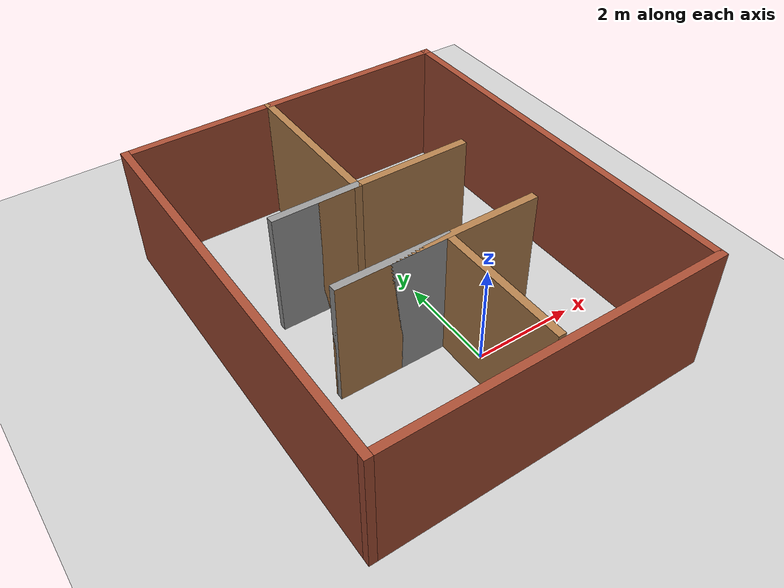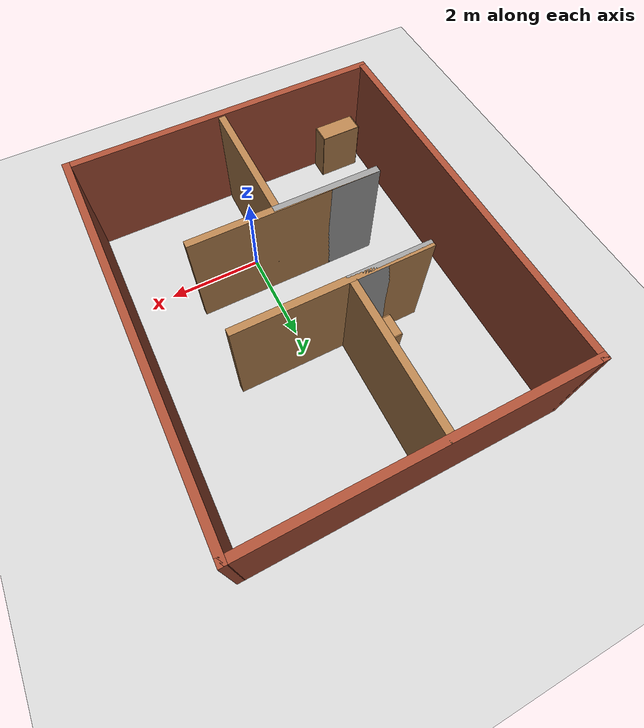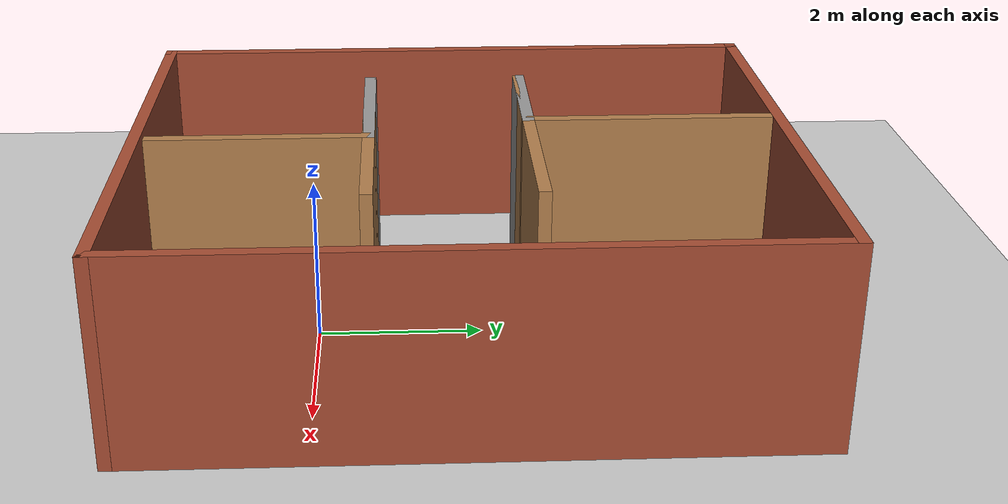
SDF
<sdf version="1.7">
 <world name="default">
  <light name="sun" type="directional">
   <pose>0 0 10 0 -0 0</pose>
   <diffuse>0.8 0.8 0.8 1</diffuse>
   <specular>0.2 0.2 0.2 1</specular>
   <attenuation>
    <range>1000</range>
    <constant>0.9</constant>
    <linear>0.01</linear>
    <quadratic>0.001</quadratic>
   </attenuation>
   <direction>-0.5 0.1 -0.9</direction>
   <spot><inner_angle>0</inner_angle><outer_angle>0</outer_angle><falloff>0</falloff></spot>
  </light>
  <model name="ground_plane">
   <static>1</static>
   <link name="link">
    <collision name="collision">
     <geometry><plane><normal>0 0 1</normal><size>100 100</size></plane></geometry>
     <surface>
      <contact><collide_bitmask>65535</collide_bitmask></contact>
      <friction><ode><mu>100</mu><mu2>50</mu2></ode></friction>
     </surface>
    </collision>
    <visual name="visual">
     <cast_shadows>0</cast_shadows>
     <geometry><plane><normal>0 0 1</normal><size>100 100</size></plane></geometry>
     <material>
      <script><uri>file://media/materials/scripts/gazebo.material</uri><name>Gazebo/Grey</name></script>
     </material>
    </visual>
   </link>
  </model>
  <gravity>0 0 -9.8</gravity>
  <magnetic_field>6e-06 2.3e-05 -4.2e-05</magnetic_field>
  <atmosphere type="adiabatic"/>
  <physics type="ode">
   <max_step_size>0.001</max_step_size>
   <real_time_factor>1</real_time_factor>
   <real_time_update_rate>1000</real_time_update_rate>
  </physics>
  <scene><ambient>0.4 0.4 0.4 1</ambient><background>0.7 0.7 0.7 1</background><shadows>1</shadows></scene>
  <spherical_coordinates>
   <surface_model>EARTH_WGS84</surface_model>
   <latitude_deg>0</latitude_deg>
   <longitude_deg>0</longitude_deg>
   <elevation>0</elevation>
   <heading_deg>0</heading_deg>
  </spherical_coordinates>
  <model name="model16">
   <pose>-0.402521 1.78909 0 0 -0 0</pose>
   <link name="Wall_0">
    <collision name="Wall_0_Collision">
     <geometry><box><size>8 0.15 2.5</size></box></geometry>
     <pose>0 0 1.25 0 -0 0</pose>
    </collision>
    <visual name="Wall_0_Visual">
     <pose>0 0 1.25 0 -0 0</pose>
     <geometry><box><size>8 0.15 2.5</size></box></geometry>
     <material>
      <script><uri>file://media/materials/scripts/gazebo.material</uri><name>Gazebo/Bricks</name></script>
      <ambient>1 1 1 1</ambient>
     </material>
     <meta><layer>0</layer></meta>
    </visual>
    <pose>-3.3 0 0 0 -0 1.5708</pose>
   </link>
   <link name="Wall_1">
    <collision name="Wall_1_Collision">
     <geometry><box><size>6.75 0.15 2.5</size></box></geometry>
     <pose>0 0 1.25 0 -0 0</pose>
    </collision>
    <visual name="Wall_1_Visual">
     <pose>0 0 1.25 0 -0 0</pose>
     <geometry><box><size>6.75 0.15 2.5</size></box></geometry>
     <material>
      <script><uri>file://media/materials/scripts/gazebo.material</uri><name>Gazebo/Bricks</name></script>
      <ambient>1 1 1 1</ambient>
     </material>
     <meta><layer>0</layer></meta>
    </visual>
    <pose>0 3.925 0 0 -0 0</pose>
   </link>
   <link name="Wall_10">
    <collision name="Wall_10_Collision">
     <geometry><box><size>2.75 0.15 2.5</size></box></geometry>
     <pose>0 0 1.25 0 -0 0</pose>
    </collision>
    <visual name="Wall_10_Visual">
     <pose>0 0 1.25 0 -0 0</pose>
     <geometry><box><size>2.75 0.15 2.5</size></box></geometry>
     <material>
      <script><uri>file://media/materials/scripts/gazebo.material</uri><name>Gazebo/Wood</name></script>
      <ambient>1 1 1 1</ambient>
     </material>
     <meta><layer>0</layer></meta>
    </visual>
    <pose>0.083522 -2.43453 0 0 -0 1.5708</pose>
   </link>
   <link name="Wall_11">
    <collision name="Wall_11_Collision">
     <geometry><box><size>2.25 0.15 2.5</size></box></geometry>
     <pose>0 0 1.25 0 -0 0</pose>
    </collision>
    <visual name="Wall_11_Visual">
     <pose>0 0 1.25 0 -0 0</pose>
     <geometry><box><size>2.25 0.15 2.5</size></box></geometry>
     <material>
      <script><uri>file://media/materials/scripts/gazebo.material</uri><name>Gazebo/Grey</name></script>
      <ambient>1 1 1 1</ambient>
     </material>
     <meta><layer>0</layer></meta>
    </visual>
    <pose>-0.966478 -1.13453 0 0 -0 3.14159</pose>
   </link>
   <link name="Wall_12">
    <collision name="Wall_12_Collision">
     <geometry><box><size>4 0.15 2.5</size></box></geometry>
     <pose>0 0 1.25 0 -0 0</pose>
    </collision>
    <visual name="Wall_12_Visual">
     <pose>0 0 1.25 0 -0 0</pose>
     <geometry><box><size>4 0.15 2.5</size></box></geometry>
     <material>
      <script><uri>file://media/materials/scripts/gazebo.material</uri><name>Gazebo/Wood</name></script>
      <ambient>1 1 1 1</ambient>
     </material>
     <meta><layer>0</layer></meta>
    </visual>
    <pose>-0.091478 -1.13453 0 0 -0 0</pose>
   </link>
   <link name="Wall_2">
    <collision name="Wall_2_Collision">
     <geometry><box><size>8 0.15 2.5</size></box></geometry>
     <pose>0 0 1.25 0 -0 0</pose>
    </collision>
    <visual name="Wall_2_Visual">
     <pose>0 0 1.25 0 -0 0</pose>
     <geometry><box><size>8 0.15 2.5</size></box></geometry>
     <material>
      <script><uri>file://media/materials/scripts/gazebo.material</uri><name>Gazebo/Bricks</name></script>
      <ambient>1 1 1 1</ambient>
     </material>
     <meta><layer>0</layer></meta>
    </visual>
    <pose>3.3 0 0 0 -0 -1.5708</pose>
   </link>
   <link name="Wall_3">
    <collision name="Wall_3_Collision">
     <geometry><box><size>6.75 0.15 2.5</size></box></geometry>
     <pose>0 0 1.25 0 -0 0</pose>
    </collision>
    <visual name="Wall_3_Visual">
     <pose>0 0 1.25 0 -0 0</pose>
     <geometry><box><size>6.75 0.15 2.5</size></box></geometry>
     <material>
      <script><uri>file://media/materials/scripts/gazebo.material</uri><name>Gazebo/Bricks</name></script>
      <ambient>1 1 1 1</ambient>
     </material>
     <meta><layer>0</layer></meta>
    </visual>
    <pose>0 -3.925 0 0 -0 3.14159</pose>
   </link>
   <link name="Wall_5">
    <collision name="Wall_5_Collision">
     <geometry><box><size>3.25 0.15 2.5</size></box></geometry>
     <pose>0 0 1.25 0 -0 0</pose>
    </collision>
    <visual name="Wall_5_Visual">
     <pose>0 0 1.25 0 -0 0</pose>
     <geometry><box><size>3.25 0.15 2.5</size></box></geometry>
     <material>
      <script><uri>file://media/materials/scripts/gazebo.material</uri><name>Gazebo/Wood</name></script>
      <ambient>1 1 1 1</ambient>
     </material>
     <meta><layer>0</layer></meta>
    </visual>
    <pose>-0.413627 2.37183 0 0 -0 -1.5708</pose>
   </link>
   <link name="Wall_6">
    <collision name="Wall_6_Collision">
     <geometry><box><size>1.75 0.15 2.5</size></box></geometry>
     <pose>0 0 1.25 0 -0 0</pose>
    </collision>
    <visual name="Wall_6_Visual">
     <pose>0 0 1.25 0 -0 0</pose>
     <geometry><box><size>1.75 0.15 2.5</size></box></geometry>
     <material>
      <script><uri>file://media/materials/scripts/gazebo.material</uri><name>Gazebo/Grey</name></script>
      <ambient>1 1 1 1</ambient>
     </material>
     <meta><layer>0</layer></meta>
    </visual>
    <pose>-1.21363 0.821833 0 0 -0 -3.14159</pose>
   </link>
   <link name="Wall_7">
    <collision name="Wall_7_Collision">
     <geometry><box><size>4 0.15 2.5</size></box></geometry>
     <pose>0 0 1.25 0 -0 0</pose>
    </collision>
    <visual name="Wall_7_Visual">
     <pose>0 0 1.25 0 -0 0</pose>
     <geometry><box><size>4 0.15 2.5</size></box></geometry>
     <material>
      <script><uri>file://media/materials/scripts/gazebo.material</uri><name>Gazebo/Wood</name></script>
      <ambient>1 1 1 1</ambient>
     </material>
     <meta><layer>0</layer></meta>
    </visual>
    <pose>-0.088627 0.821833 0 0 -0 0</pose>
   </link>
   <static>1</static>
  </model>
  <model name="bookshelf">
   <static>1</static>
   <link name="link">
    <inertial><mass>1</mass></inertial>
    <collision name="back">
     <pose>0 0.005 0.6 0 -0 0</pose>
     <geometry><box><size>0.9 0.01 1.2</size></box></geometry>
    </collision>
    <visual name="visual1">
     <pose>0 0.005 0.6 0 -0 0</pose>
     <geometry><box><size>0.9 0.01 1.2</size></box></geometry>
     <material>
      <script><uri>file://media/materials/scripts/gazebo.material</uri><name>Gazebo/Wood</name></script>
     </material>
    </visual>
    <collision name="left_side">
     <pose>0.45 -0.195 0.6 0 -0 0</pose>
     <geometry><box><size>0.02 0.4 1.2</size></box></geometry>
    </collision>
    <visual name="visual2">
     <pose>0.45 -0.195 0.6 0 -0 0</pose>
     <geometry><box><size>0.02 0.4 1.2</size></box></geometry>
     <material>
      <script><uri>file://media/materials/scripts/gazebo.material</uri><name>Gazebo/Wood</name></script>
     </material>
    </visual>
    <collision name="right_side">
     <pose>-0.45 -0.195 0.6 0 -0 0</pose>
     <geometry><box><size>0.02 0.4 1.2</size></box></geometry>
    </collision>
    <visual name="visual3">
     <pose>-0.45 -0.195 0.6 0 -0 0</pose>
     <geometry><box><size>0.02 0.4 1.2</size></box></geometry>
     <material>
      <script><uri>file://media/materials/scripts/gazebo.material</uri><name>Gazebo/Wood</name></script>
     </material>
    </visual>
    <collision name="bottom">
     <pose>0 -0.195 0.03 0 -0 0</pose>
     <geometry><box><size>0.88 0.4 0.06</size></box></geometry>
    </collision>
    <visual name="visual4">
     <pose>0 -0.195 0.03 0 -0 0</pose>
     <geometry><box><size>0.88 0.4 0.06</size></box></geometry>
     <material>
      <script><uri>file://media/materials/scripts/gazebo.material</uri><name>Gazebo/Wood</name></script>
     </material>
    </visual>
    <collision name="top">
     <pose>0 -0.195 1.19 0 -0 0</pose>
     <geometry><box><size>0.88 0.4 0.02</size></box></geometry>
    </collision>
    <visual name="visual5">
     <pose>0 -0.195 1.19 0 -0 0</pose>
     <geometry><box><size>0.88 0.4 0.02</size></box></geometry>
     <material>
      <script><uri>file://media/materials/scripts/gazebo.material</uri><name>Gazebo/Wood</name></script>
     </material>
    </visual>
    <collision name="low_shelf">
     <pose>0 -0.195 0.43 0 -0 0</pose>
     <geometry><box><size>0.88 0.4 0.02</size></box></geometry>
    </collision>
    <visual name="visual6">
     <pose>0 -0.195 0.43 0 -0 0</pose>
     <geometry><box><size>0.88 0.4 0.02</size></box></geometry>
     <material>
      <script><uri>file://media/materials/scripts/gazebo.material</uri><name>Gazebo/Wood</name></script>
     </material>
    </visual>
    <collision name="high_shelf">
     <pose>0 -0.195 0.8 0 -0 0</pose>
     <geometry><box><size>0.88 0.4 0.02</size></box></geometry>
    </collision>
    <visual name="visual7">
     <pose>0 -0.195 0.8 0 -0 0</pose>
     <geometry><box><size>0.88 0.4 0.02</size></box></geometry>
     <material>
      <script><uri>file://media/materials/scripts/gazebo.material</uri><name>Gazebo/Wood</name></script>
     </material>
    </visual>
   </link>
   <pose>-2.98797 -1.64235 0 0 -0 0</pose>
  </model>
  <model name="cabinet">
   <static>1</static>
   <link name="cabinet_bottom_plate">
    <inertial>
     <pose>0 0 -1 0 -0 0</pose>
     <inertia><ixx>2.05</ixx><ixy>0</ixy><ixz>0</ixz><iyy>2.05</iyy><iyz>0</iyz><izz>2.05</izz></inertia>
     <mass>25</mass>
    </inertial>
    <collision name="cabinet_bottom_plate_geom">
     <pose>0 0 0.01 0 -0 0</pose>
     <geometry><box><size>0.45 0.45 0.02</size></box></geometry>
    </collision>
    <visual name="cabinet_bottom_plate_geom_visual">
     <pose>0 0 0.01 0 -0 0</pose>
     <geometry><box><size>0.45 0.45 0.02</size></box></geometry>
     <material>
      <script><uri>file://media/materials/scripts/gazebo.material</uri><name>Gazebo/Wood</name></script>
     </material>
    </visual>
    <collision name="cabinet_bottom_plate_geom_cabinet_back_plate">
     <pose>0.235 0 0.51 0 -0 0</pose>
     <geometry><box><size>0.02 0.45 1.02</size></box></geometry>
    </collision>
    <visual name="cabinet_bottom_plate_geom_cabinet_back_plate_visual">
     <pose>0.235 0 0.51 0 -0 0</pose>
     <geometry><box><size>0.02 0.45 1.02</size></box></geometry>
     <material>
      <script><uri>file://media/materials/scripts/gazebo.material</uri><name>Gazebo/Wood</name></script>
     </material>
    </visual>
    <collision name="cabinet_bottom_plate_geom_cabinet_left_plate">
     <pose>0 0.235 0.51 0 -0 0</pose>
     <geometry><box><size>0.45 0.02 1.02</size></box></geometry>
    </collision>
    <visual name="cabinet_bottom_plate_geom_cabinet_left_plate_visual">
     <pose>0 0.235 0.51 0 -0 0</pose>
     <geometry><box><size>0.45 0.02 1.02</size></box></geometry>
     <material>
      <script><uri>file://media/materials/scripts/gazebo.material</uri><name>Gazebo/Wood</name></script>
     </material>
    </visual>
    <collision name="cabinet_bottom_plate_geom_cabinet_middle_plate">
     <pose>0 0 0.51 0 -0 0</pose>
     <geometry><box><size>0.45 0.45 0.02</size></box></geometry>
    </collision>
    <visual name="cabinet_bottom_plate_geom_cabinet_middle_plate_visual">
     <pose>0 0 0.51 0 -0 0</pose>
     <geometry><box><size>0.45 0.45 0.02</size></box></geometry>
     <material>
      <script><uri>file://media/materials/scripts/gazebo.material</uri><name>Gazebo/Wood</name></script>
     </material>
    </visual>
    <collision name="cabinet_bottom_plate_geom_cabinet_right_plate">
     <pose>0 -0.235 0.51 0 -0 0</pose>
     <geometry><box><size>0.45 0.02 1.02</size></box></geometry>
    </collision>
    <visual name="cabinet_bottom_plate_geom_cabinet_right_plate_visual">
     <pose>0 -0.235 0.51 0 -0 0</pose>
     <geometry><box><size>0.45 0.02 1.02</size></box></geometry>
     <material>
      <script><uri>file://media/materials/scripts/gazebo.material</uri><name>Gazebo/Wood</name></script>
     </material>
    </visual>
    <collision name="cabinet_bottom_plate_geom_cabinet_top_plate">
     <pose>0 0 1.01 0 -0 0</pose>
     <geometry><box><size>0.45 0.45 0.02</size></box></geometry>
    </collision>
    <visual name="cabinet_bottom_plate_geom_cabinet_top_plate_visual">
     <pose>0 0 1.01 0 -0 0</pose>
     <geometry><box><size>0.45 0.45 0.02</size></box></geometry>
     <material>
      <script><uri>file://media/materials/scripts/gazebo.material</uri><name>Gazebo/Wood</name></script>
     </material>
    </visual>
   </link>
   <pose>-1.37952 3.14572 0 0 -0 0</pose>
  </model>
 </world>
</sdf>
